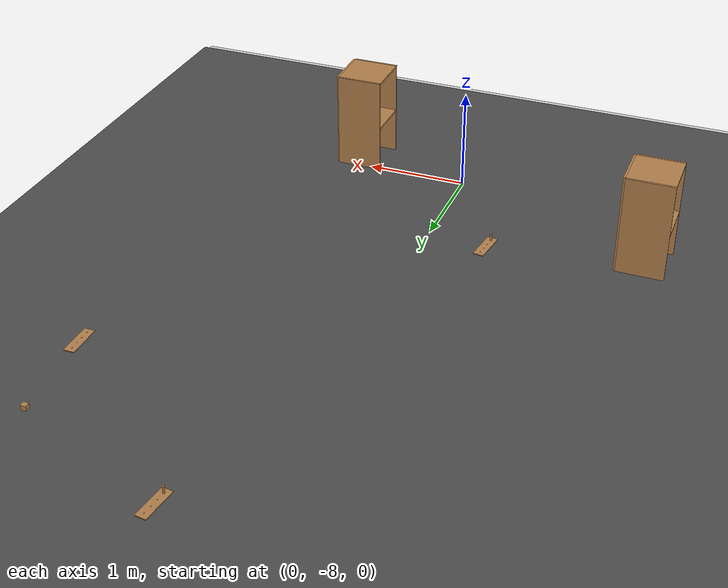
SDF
<sdf version="1.7">
 <world name="default">
  <model name="ground_plane">
   <static>1</static>
   <link name="link">
    <collision name="collision">
     <geometry><plane><normal>0 0 1</normal><size>100 100</size></plane></geometry>
     <surface>
      <contact><collide_bitmask>65535</collide_bitmask></contact>
      <friction><ode><mu>100</mu><mu2>50</mu2></ode></friction>
     </surface>
    </collision>
    <visual name="visual">
     <cast_shadows>0</cast_shadows>
     <geometry><plane><normal>0 0 1</normal><size>100 100</size></plane></geometry>
     <material>
      <script><uri>file://media/materials/scripts/gazebo.material</uri><name>Gazebo/Grey</name></script>
     </material>
    </visual>
   </link>
  </model>
  <model name="asphalt_plane">
   <static>1</static>
   <link name="link">
    <collision name="collision"><geometry><box><size>20 20 0.1</size></box></geometry></collision>
    <visual name="visual">
     <cast_shadows>0</cast_shadows>
     <geometry><box><size>20 20 0.1</size></box></geometry>
     <material>
      <script>
       <uri>model://asphalt_plane/materials/scripts</uri>
       <uri>model://asphalt_plane/materials/textures</uri>
       <name>vrc/asphalt</name>
      </script>
     </material>
    </visual>
   </link>
   <pose>0.032164 -0.016772 0 0 -0 0</pose>
  </model>
  <model name="cabinet">
   <static>1</static>
   <link name="cabinet_bottom_plate">
    <inertial>
     <pose>0 0 -1 0 -0 0</pose>
     <inertia><ixx>2.05</ixx><ixy>0</ixy><ixz>0</ixz><iyy>2.05</iyy><iyz>0</iyz><izz>2.05</izz></inertia>
     <mass>25</mass>
    </inertial>
    <collision name="cabinet_bottom_plate_geom">
     <pose>0 0 0.01 0 -0 0</pose>
     <geometry><box><size>0.45 0.45 0.02</size></box></geometry>
    </collision>
    <visual name="cabinet_bottom_plate_geom_visual">
     <pose>0 0 0.01 0 -0 0</pose>
     <geometry><box><size>0.45 0.45 0.02</size></box></geometry>
     <material>
      <script><uri>file://media/materials/scripts/gazebo.material</uri><name>Gazebo/Wood</name></script>
     </material>
    </visual>
    <collision name="cabinet_bottom_plate_geom_cabinet_back_plate">
     <pose>0.235 0 0.51 0 -0 0</pose>
     <geometry><box><size>0.02 0.45 1.02</size></box></geometry>
    </collision>
    <visual name="cabinet_bottom_plate_geom_cabinet_back_plate_visual">
     <pose>0.235 0 0.51 0 -0 0</pose>
     <geometry><box><size>0.02 0.45 1.02</size></box></geometry>
     <material>
      <script><uri>file://media/materials/scripts/gazebo.material</uri><name>Gazebo/Wood</name></script>
     </material>
    </visual>
    <collision name="cabinet_bottom_plate_geom_cabinet_left_plate">
     <pose>0 0.235 0.51 0 -0 0</pose>
     <geometry><box><size>0.45 0.02 1.02</size></box></geometry>
    </collision>
    <visual name="cabinet_bottom_plate_geom_cabinet_left_plate_visual">
     <pose>0 0.235 0.51 0 -0 0</pose>
     <geometry><box><size>0.45 0.02 1.02</size></box></geometry>
     <material>
      <script><uri>file://media/materials/scripts/gazebo.material</uri><name>Gazebo/Wood</name></script>
     </material>
    </visual>
    <collision name="cabinet_bottom_plate_geom_cabinet_middle_plate">
     <pose>0 0 0.51 0 -0 0</pose>
     <geometry><box><size>0.45 0.45 0.02</size></box></geometry>
    </collision>
    <visual name="cabinet_bottom_plate_geom_cabinet_middle_plate_visual">
     <pose>0 0 0.51 0 -0 0</pose>
     <geometry><box><size>0.45 0.45 0.02</size></box></geometry>
     <material>
      <script><uri>file://media/materials/scripts/gazebo.material</uri><name>Gazebo/Wood</name></script>
     </material>
    </visual>
    <collision name="cabinet_bottom_plate_geom_cabinet_right_plate">
     <pose>0 -0.235 0.51 0 -0 0</pose>
     <geometry><box><size>0.45 0.02 1.02</size></box></geometry>
    </collision>
    <visual name="cabinet_bottom_plate_geom_cabinet_right_plate_visual">
     <pose>0 -0.235 0.51 0 -0 0</pose>
     <geometry><box><size>0.45 0.02 1.02</size></box></geometry>
     <material>
      <script><uri>file://media/materials/scripts/gazebo.material</uri><name>Gazebo/Wood</name></script>
     </material>
    </visual>
    <collision name="cabinet_bottom_plate_geom_cabinet_top_plate">
     <pose>0 0 1.01 0 -0 0</pose>
     <geometry><box><size>0.45 0.45 0.02</size></box></geometry>
    </collision>
    <visual name="cabinet_bottom_plate_geom_cabinet_top_plate_visual">
     <pose>0 0 1.01 0 -0 0</pose>
     <geometry><box><size>0.45 0.45 0.02</size></box></geometry>
     <material>
      <script><uri>file://media/materials/scripts/gazebo.material</uri><name>Gazebo/Wood</name></script>
     </material>
    </visual>
   </link>
   <pose>-2.04611 -7.14064 0 0 -0 0</pose>
  </model>
  <model name="wooden_peg_board_0">
   <frame name="wooden_board::__model__" attached_to="wooden_board::base">
    <pose relative_to="__model__">0 0 0 0 -0 0</pose>
   </frame>
   <link name="wooden_board::base">
    <pose relative_to="wooden_board::__model__">0 0 0.00523 0 -0 0</pose>
    <inertial>
     <mass>0.2765</mass>
     <inertia>
      <ixx>0.0025148</ixx>
      <ixy>0</ixy>
      <ixz>0</ixz>
      <iyy>0.00024037</iyy>
      <iyz>0</iyz>
      <izz>0.00275013</izz>
     </inertia>
    </inertial>
    <collision name="collision">
     <geometry><box><size>0.1016 0.3302 0.01046</size></box></geometry>
     <surface>
      <contact>
       <poissons_ratio>0.347</poissons_ratio>
       <elastic_modulus>8.8e+09</elastic_modulus>
       <ode><kp>100000</kp><kd>100</kd><max_vel>100</max_vel><min_depth>0.001</min_depth></ode>
      </contact>
      <friction>
       <torsional>
        <coefficient>1</coefficient>
        <use_patch_radius>0</use_patch_radius>
        <surface_radius>0.01</surface_radius>
       </torsional>
      </friction>
     </surface>
    </collision>
    <visual name="visual">
     <geometry><box><size>0.1016 0.3302 0.01046</size></box></geometry>
     <material>
      <script><uri>file://media/materials/scripts/gazebo.material</uri><name>Gazebo/Wood</name></script>
     </material>
    </visual>
    <visual name="tee_nut_1">
     <pose>0 -0.116 0 0 -0 0</pose>
     <geometry><cylinder><radius>0.00635</radius><length>0.0105646</length></cylinder></geometry>
     <material>
      <script><uri>file://media/materials/scripts/gazebo.material</uri><name>Gazebo/Grey</name></script>
     </material>
    </visual>
    <visual name="tee_nut_2">
     <pose>0 -0.038 0 0 -0 0</pose>
     <geometry><cylinder><radius>0.00635</radius><length>0.0105646</length></cylinder></geometry>
     <material>
      <script><uri>file://media/materials/scripts/gazebo.material</uri><name>Gazebo/Grey</name></script>
     </material>
    </visual>
    <visual name="tee_nut_3">
     <pose>0 0.038 0 0 -0 0</pose>
     <geometry><cylinder><radius>0.00635</radius><length>0.0105646</length></cylinder></geometry>
     <material>
      <script><uri>file://media/materials/scripts/gazebo.material</uri><name>Gazebo/Grey</name></script>
     </material>
    </visual>
    <visual name="tee_nut_4">
     <pose>0 0.116 0 0 -0 0</pose>
     <geometry><cylinder><radius>0.00635</radius><length>0.0105646</length></cylinder></geometry>
     <material>
      <script><uri>file://media/materials/scripts/gazebo.material</uri><name>Gazebo/Grey</name></script>
     </material>
    </visual>
   </link>
   <frame name="peg::__model__" attached_to="peg::link">
    <pose relative_to="__model__">0 0.116 0 0 -0 0</pose>
   </frame>
   <link name="peg::link">
    <pose relative_to="peg::__model__">0 0 0.04 0 -0 0</pose>
    <inertial>
     <mass>0.0175</mass>
     <inertia>
      <ixx>9.74923e-06</ixx>
      <ixy>0</ixy>
      <ixz>0</ixz>
      <iyy>9.74923e-06</iyy>
      <iyz>0</iyz>
      <izz>8.31797e-07</izz>
     </inertia>
    </inertial>
    <collision name="collision">
     <geometry><cylinder><radius>0.00975</radius><length>0.08</length></cylinder></geometry>
     <surface>
      <contact>
       <poissons_ratio>0.347</poissons_ratio>
       <elastic_modulus>8.8e+09</elastic_modulus>
       <ode><kp>100000</kp><kd>100</kd><max_vel>100</max_vel><min_depth>0.001</min_depth></ode>
      </contact>
      <friction>
       <torsional>
        <coefficient>1</coefficient>
        <use_patch_radius>0</use_patch_radius>
        <surface_radius>0.01</surface_radius>
       </torsional>
      </friction>
     </surface>
    </collision>
    <visual name="visual">
     <geometry><cylinder><radius>0.00975</radius><length>0.08</length></cylinder></geometry>
     <material>
      <script><uri>file://media/materials/scripts/gazebo.material</uri><name>Gazebo/Wood</name></script>
     </material>
    </visual>
   </link>
   <joint name="board_peg" type="revolute">
    <parent>wooden_board::base</parent>
    <child>peg::link</child>
    <axis>
     <xyz>0 0 1</xyz>
     <limit><upper>0</upper><lower>0</lower></limit>
     <dynamics><spring_reference>0</spring_reference><spring_stiffness>0</spring_stiffness></dynamics>
    </axis>
   </joint>
   <pose>-0.60087 -6.86018 0.048997 1.4e-05 3e-06 3.00406</pose>
  </model>
  <model name="wooden_peg_board_1">
   <frame name="wooden_board::__model__" attached_to="wooden_board::base">
    <pose relative_to="__model__">0 0 0 0 -0 0</pose>
   </frame>
   <link name="wooden_board::base">
    <pose relative_to="wooden_board::__model__">0 0 0.00523 0 -0 0</pose>
    <inertial>
     <mass>0.2765</mass>
     <inertia>
      <ixx>0.0025148</ixx>
      <ixy>0</ixy>
      <ixz>0</ixz>
      <iyy>0.00024037</iyy>
      <iyz>0</iyz>
      <izz>0.00275013</izz>
     </inertia>
    </inertial>
    <collision name="collision">
     <geometry><box><size>0.1016 0.3302 0.01046</size></box></geometry>
     <surface>
      <contact>
       <poissons_ratio>0.347</poissons_ratio>
       <elastic_modulus>8.8e+09</elastic_modulus>
       <ode><kp>100000</kp><kd>100</kd><max_vel>100</max_vel><min_depth>0.001</min_depth></ode>
      </contact>
      <friction>
       <torsional>
        <coefficient>1</coefficient>
        <use_patch_radius>0</use_patch_radius>
        <surface_radius>0.01</surface_radius>
       </torsional>
      </friction>
     </surface>
    </collision>
    <visual name="visual">
     <geometry><box><size>0.1016 0.3302 0.01046</size></box></geometry>
     <material>
      <script><uri>file://media/materials/scripts/gazebo.material</uri><name>Gazebo/Wood</name></script>
     </material>
    </visual>
    <visual name="tee_nut_1">
     <pose>0 -0.116 0 0 -0 0</pose>
     <geometry><cylinder><radius>0.00635</radius><length>0.0105646</length></cylinder></geometry>
     <material>
      <script><uri>file://media/materials/scripts/gazebo.material</uri><name>Gazebo/Grey</name></script>
     </material>
    </visual>
    <visual name="tee_nut_2">
     <pose>0 -0.038 0 0 -0 0</pose>
     <geometry><cylinder><radius>0.00635</radius><length>0.0105646</length></cylinder></geometry>
     <material>
      <script><uri>file://media/materials/scripts/gazebo.material</uri><name>Gazebo/Grey</name></script>
     </material>
    </visual>
    <visual name="tee_nut_3">
     <pose>0 0.038 0 0 -0 0</pose>
     <geometry><cylinder><radius>0.00635</radius><length>0.0105646</length></cylinder></geometry>
     <material>
      <script><uri>file://media/materials/scripts/gazebo.material</uri><name>Gazebo/Grey</name></script>
     </material>
    </visual>
    <visual name="tee_nut_4">
     <pose>0 0.116 0 0 -0 0</pose>
     <geometry><cylinder><radius>0.00635</radius><length>0.0105646</length></cylinder></geometry>
     <material>
      <script><uri>file://media/materials/scripts/gazebo.material</uri><name>Gazebo/Grey</name></script>
     </material>
    </visual>
   </link>
   <frame name="peg::__model__" attached_to="peg::link">
    <pose relative_to="__model__">0 0.116 0 0 -0 0</pose>
   </frame>
   <link name="peg::link">
    <pose relative_to="peg::__model__">0 0 0.04 0 -0 0</pose>
    <inertial>
     <mass>0.0175</mass>
     <inertia>
      <ixx>9.74923e-06</ixx>
      <ixy>0</ixy>
      <ixz>0</ixz>
      <iyy>9.74923e-06</iyy>
      <iyz>0</iyz>
      <izz>8.31797e-07</izz>
     </inertia>
    </inertial>
    <collision name="collision">
     <geometry><cylinder><radius>0.00975</radius><length>0.08</length></cylinder></geometry>
     <surface>
      <contact>
       <poissons_ratio>0.347</poissons_ratio>
       <elastic_modulus>8.8e+09</elastic_modulus>
       <ode><kp>100000</kp><kd>100</kd><max_vel>100</max_vel><min_depth>0.001</min_depth></ode>
      </contact>
      <friction>
       <torsional>
        <coefficient>1</coefficient>
        <use_patch_radius>0</use_patch_radius>
        <surface_radius>0.01</surface_radius>
       </torsional>
      </friction>
     </surface>
    </collision>
    <visual name="visual">
     <geometry><cylinder><radius>0.00975</radius><length>0.08</length></cylinder></geometry>
     <material>
      <script><uri>file://media/materials/scripts/gazebo.material</uri><name>Gazebo/Wood</name></script>
     </material>
    </visual>
   </link>
   <joint name="board_peg" type="revolute">
    <parent>wooden_board::base</parent>
    <child>peg::link</child>
    <axis>
     <xyz>0 0 1</xyz>
     <limit><upper>0</upper><lower>0</lower></limit>
     <dynamics><spring_reference>0</spring_reference><spring_stiffness>0</spring_stiffness></dynamics>
    </axis>
   </joint>
   <pose>0.596258 -2.70052 0.048997 1.4e-05 3e-06 3.00405</pose>
  </model>
  <model name="wood_cube_5cm">
   <link name="link">
    <pose>0 0 0.025 0 -0 0</pose>
    <inertial>
     <mass>0.0565</mass>
     <inertia>
      <ixx>2.35417e-05</ixx>
      <ixy>0</ixy>
      <ixz>0</ixz>
      <iyy>2.35417e-05</iyy>
      <iyz>0</iyz>
      <izz>2.35417e-05</izz>
     </inertia>
    </inertial>
    <collision name="collision">
     <geometry><box><size>0.05 0.05 0.05</size></box></geometry>
     <surface>
      <contact>
       <poissons_ratio>0.347</poissons_ratio>
       <elastic_modulus>8.8e+09</elastic_modulus>
       <ode><kp>100000</kp><kd>1</kd><max_vel>1</max_vel><min_depth>0.001</min_depth></ode>
      </contact>
      <friction>
       <torsional>
        <coefficient>1</coefficient>
        <use_patch_radius>0</use_patch_radius>
        <surface_radius>0.05</surface_radius>
       </torsional>
      </friction>
     </surface>
    </collision>
    <visual name="visual">
     <geometry><box><size>0.05 0.05 0.05</size></box></geometry>
     <material>
      <script><uri>file://media/materials/scripts/gazebo.material</uri><name>Gazebo/Wood</name></script>
     </material>
    </visual>
   </link>
   <pose>2.07079 -3.26584 0.048999 0 -0 0</pose>
  </model>
  <model name="wooden_board">
   <link name="base">
    <pose>0 0 0.00523 0 -0 0</pose>
    <inertial>
     <mass>0.2765</mass>
     <inertia>
      <ixx>0.0025148</ixx>
      <ixy>0</ixy>
      <ixz>0</ixz>
      <iyy>0.00024037</iyy>
      <iyz>0</iyz>
      <izz>0.00275013</izz>
     </inertia>
    </inertial>
    <collision name="collision">
     <geometry><box><size>0.1016 0.3302 0.01046</size></box></geometry>
     <surface>
      <contact>
       <poissons_ratio>0.347</poissons_ratio>
       <elastic_modulus>8.8e+09</elastic_modulus>
       <ode><kp>100000</kp><kd>100</kd><max_vel>100</max_vel><min_depth>0.001</min_depth></ode>
      </contact>
      <friction>
       <torsional>
        <coefficient>1</coefficient>
        <use_patch_radius>0</use_patch_radius>
        <surface_radius>0.01</surface_radius>
       </torsional>
      </friction>
     </surface>
    </collision>
    <visual name="visual">
     <geometry><box><size>0.1016 0.3302 0.01046</size></box></geometry>
     <material>
      <script><uri>file://media/materials/scripts/gazebo.material</uri><name>Gazebo/Wood</name></script>
     </material>
    </visual>
    <visual name="tee_nut_1">
     <pose>0 -0.116 0 0 -0 0</pose>
     <geometry><cylinder><radius>0.00635</radius><length>0.0105646</length></cylinder></geometry>
     <material>
      <script><uri>file://media/materials/scripts/gazebo.material</uri><name>Gazebo/Grey</name></script>
     </material>
    </visual>
    <visual name="tee_nut_2">
     <pose>0 -0.038 0 0 -0 0</pose>
     <geometry><cylinder><radius>0.00635</radius><length>0.0105646</length></cylinder></geometry>
     <material>
      <script><uri>file://media/materials/scripts/gazebo.material</uri><name>Gazebo/Grey</name></script>
     </material>
    </visual>
    <visual name="tee_nut_3">
     <pose>0 0.038 0 0 -0 0</pose>
     <geometry><cylinder><radius>0.00635</radius><length>0.0105646</length></cylinder></geometry>
     <material>
      <script><uri>file://media/materials/scripts/gazebo.material</uri><name>Gazebo/Grey</name></script>
     </material>
    </visual>
    <visual name="tee_nut_4">
     <pose>0 0.116 0 0 -0 0</pose>
     <geometry><cylinder><radius>0.00635</radius><length>0.0105646</length></cylinder></geometry>
     <material>
      <script><uri>file://media/materials/scripts/gazebo.material</uri><name>Gazebo/Grey</name></script>
     </material>
    </visual>
   </link>
   <pose>2.15879 -4.19341 0.048993 0 -0 6e-05</pose>
  </model>
  <model name="cabinet_6">
   <static>1</static>
   <link name="cabinet_bottom_plate">
    <inertial>
     <pose>0 0 -1 0 -0 0</pose>
     <inertia><ixx>2.05</ixx><ixy>0</ixy><ixz>0</ixz><iyy>2.05</iyy><iyz>0</iyz><izz>2.05</izz></inertia>
     <mass>25</mass>
    </inertial>
    <collision name="cabinet_bottom_plate_geom">
     <pose>0 0 0.01 0 -0 0</pose>
     <geometry><box><size>0.45 0.45 0.02</size></box></geometry>
    </collision>
    <visual name="cabinet_bottom_plate_geom_visual">
     <pose>0 0 0.01 0 -0 0</pose>
     <geometry><box><size>0.45 0.45 0.02</size></box></geometry>
     <material>
      <script><uri>file://media/materials/scripts/gazebo.material</uri><name>Gazebo/Wood</name></script>
     </material>
    </visual>
    <collision name="cabinet_bottom_plate_geom_cabinet_back_plate">
     <pose>0.235 0 0.51 0 -0 0</pose>
     <geometry><box><size>0.02 0.45 1.02</size></box></geometry>
    </collision>
    <visual name="cabinet_bottom_plate_geom_cabinet_back_plate_visual">
     <pose>0.235 0 0.51 0 -0 0</pose>
     <geometry><box><size>0.02 0.45 1.02</size></box></geometry>
     <material>
      <script><uri>file://media/materials/scripts/gazebo.material</uri><name>Gazebo/Wood</name></script>
     </material>
    </visual>
    <collision name="cabinet_bottom_plate_geom_cabinet_left_plate">
     <pose>0 0.235 0.51 0 -0 0</pose>
     <geometry><box><size>0.45 0.02 1.02</size></box></geometry>
    </collision>
    <visual name="cabinet_bottom_plate_geom_cabinet_left_plate_visual">
     <pose>0 0.235 0.51 0 -0 0</pose>
     <geometry><box><size>0.45 0.02 1.02</size></box></geometry>
     <material>
      <script><uri>file://media/materials/scripts/gazebo.material</uri><name>Gazebo/Wood</name></script>
     </material>
    </visual>
    <collision name="cabinet_bottom_plate_geom_cabinet_middle_plate">
     <pose>0 0 0.51 0 -0 0</pose>
     <geometry><box><size>0.45 0.45 0.02</size></box></geometry>
    </collision>
    <visual name="cabinet_bottom_plate_geom_cabinet_middle_plate_visual">
     <pose>0 0 0.51 0 -0 0</pose>
     <geometry><box><size>0.45 0.45 0.02</size></box></geometry>
     <material>
      <script><uri>file://media/materials/scripts/gazebo.material</uri><name>Gazebo/Wood</name></script>
     </material>
    </visual>
    <collision name="cabinet_bottom_plate_geom_cabinet_right_plate">
     <pose>0 -0.235 0.51 0 -0 0</pose>
     <geometry><box><size>0.45 0.02 1.02</size></box></geometry>
    </collision>
    <visual name="cabinet_bottom_plate_geom_cabinet_right_plate_visual">
     <pose>0 -0.235 0.51 0 -0 0</pose>
     <geometry><box><size>0.45 0.02 1.02</size></box></geometry>
     <material>
      <script><uri>file://media/materials/scripts/gazebo.material</uri><name>Gazebo/Wood</name></script>
     </material>
    </visual>
    <collision name="cabinet_bottom_plate_geom_cabinet_top_plate">
     <pose>0 0 1.01 0 -0 0</pose>
     <geometry><box><size>0.45 0.45 0.02</size></box></geometry>
    </collision>
    <visual name="cabinet_bottom_plate_geom_cabinet_top_plate_visual">
     <pose>0 0 1.01 0 -0 0</pose>
     <geometry><box><size>0.45 0.45 0.02</size></box></geometry>
     <material>
      <script><uri>file://media/materials/scripts/gazebo.material</uri><name>Gazebo/Wood</name></script>
     </material>
    </visual>
   </link>
   <pose>1.09501 -8.137 0 0 -0 0</pose>
  </model>
 </world>
</sdf>
